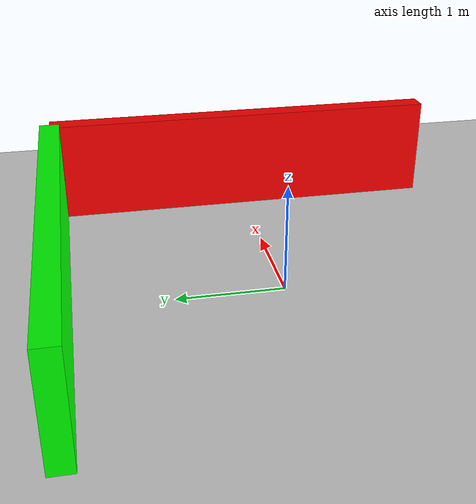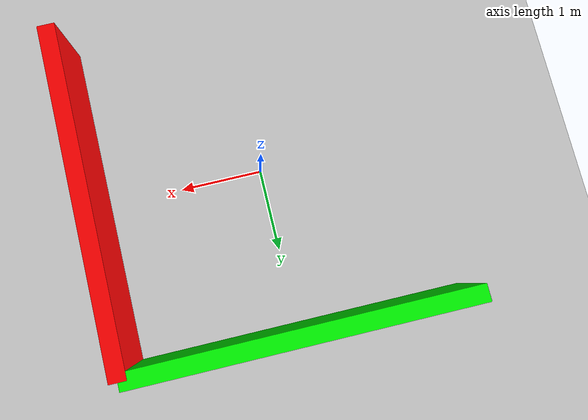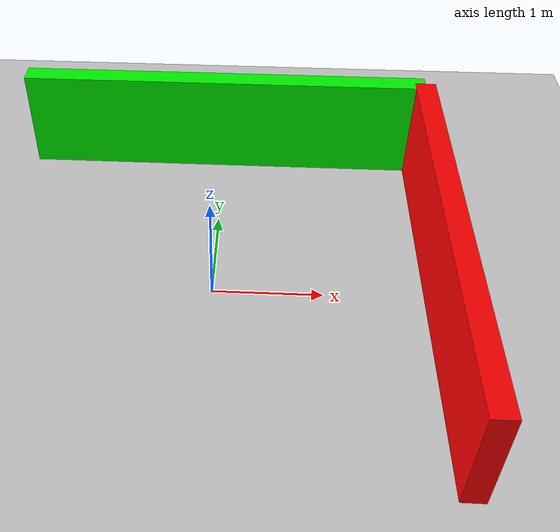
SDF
<?xml version="1.0" ?>
<sdf version="1.8">
  <world name="test_world">
    <physics name="1ms" type="ignored">
      <max_step_size>0.001</max_step_size>
      <real_time_factor>1.0</real_time_factor>
    </physics>
    <plugin
      filename="ignition-gazebo-physics-system"
      name="ignition::gazebo::systems::Physics">
    </plugin>
    <plugin
      filename="ignition-gazebo-user-commands-system"
      name="ignition::gazebo::systems::UserCommands">
    </plugin>
    <plugin
      filename="ignition-gazebo-scene-broadcaster-system"
      name="ignition::gazebo::systems::SceneBroadcaster">
    </plugin>
    <plugin
      filename="ignition-gazebo-sensors-system"
      name="ignition::gazebo::systems::Sensors">
      <render_engine>ogre2</render_engine>
    </plugin>

    <light type="directional" name="sun">
      <cast_shadows>true</cast_shadows>
      <pose>0 0 10 0 0 0</pose>
      <diffuse>0.8 0.8 0.8 1</diffuse>
      <specular>0.2 0.2 0.2 1</specular>
      <attenuation>
        <range>1000</range>
        <constant>0.9</constant>
        <linear>0.01</linear>
        <quadratic>0.001</quadratic>
      </attenuation>
      <direction>-0.5 0.1 -0.9</direction>
    </light>

    <model name="ground_plane">
      <static>true</static>
      <link name="link">
        <collision name="collision">
          <geometry>
            <plane>
              <normal>0 0 1</normal>
              <size>100 100</size>
            </plane>
          </geometry>
        </collision>
        <visual name="visual">
          <geometry>
            <plane>
              <normal>0 0 1</normal>
              <size>100 100</size>
            </plane>
          </geometry>
          <material>
            <ambient>0.8 0.8 0.8 1</ambient>
            <diffuse>0.8 0.8 0.8 1</diffuse>
          </material>
        </visual>
      </link>
    </model>

    <!-- Simple walls -->
    <model name="wall_1">
      <static>true</static>
      <pose>2 0 0.5 0 0 0</pose>
      <link name="link">
        <collision name="collision">
          <geometry><box><size>0.2 4 1</size></box></geometry>
        </collision>
        <visual name="visual">
          <geometry><box><size>0.2 4 1</size></box></geometry>
          <material><ambient>1 0 0 1</ambient></material>
        </visual>
      </link>
    </model>
    <model name="wall_2">
      <static>true</static>
      <pose>0 2 0.5 0 0 0</pose>
      <link name="link">
        <collision name="collision">
          <geometry><box><size>4 0.2 1</size></box></geometry>
        </collision>
        <visual name="visual">
          <geometry><box><size>4 0.2 1</size></box></geometry>
          <material><ambient>0 1 0 1</ambient></material>
        </visual>
      </link>
    </model>
  </world>
</sdf>
